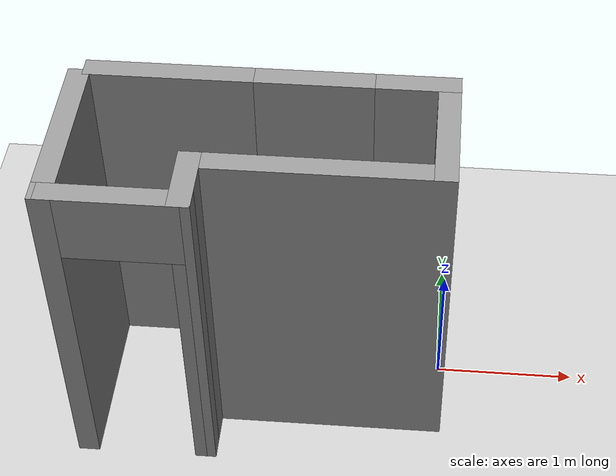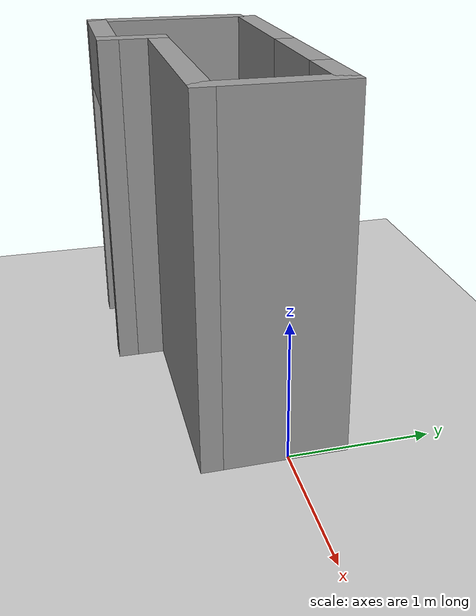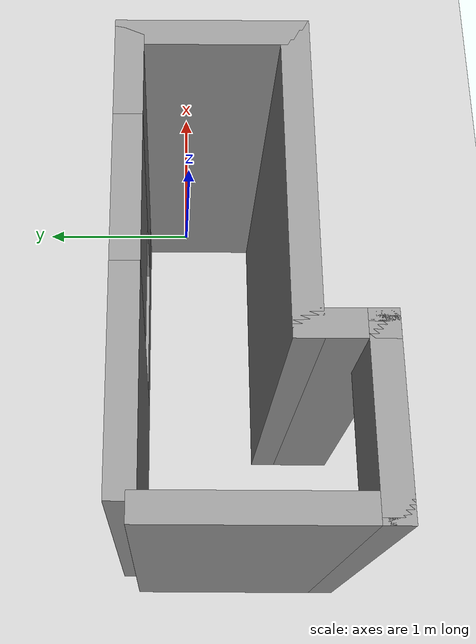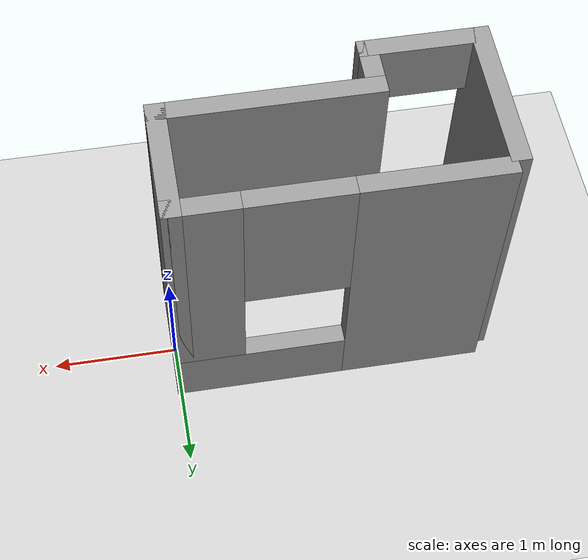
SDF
<sdf version="1.7">
 <world name="default">
  <light name="sun" type="directional">
   <pose>0 0 10 0 -0 0</pose>
   <diffuse>0.8 0.8 0.8 1</diffuse>
   <specular>0.2 0.2 0.2 1</specular>
   <attenuation>
    <range>1000</range>
    <constant>0.9</constant>
    <linear>0.01</linear>
    <quadratic>0.001</quadratic>
   </attenuation>
   <direction>-0.5 0.1 -0.9</direction>
   <spot><inner_angle>0</inner_angle><outer_angle>0</outer_angle><falloff>0</falloff></spot>
  </light>
  <model name="ground_plane">
   <static>1</static>
   <link name="link">
    <collision name="collision">
     <geometry><plane><normal>0 0 1</normal><size>100 100</size></plane></geometry>
     <surface>
      <contact><collide_bitmask>65535</collide_bitmask></contact>
      <friction><ode><mu>100</mu><mu2>50</mu2></ode></friction>
     </surface>
    </collision>
    <visual name="visual">
     <cast_shadows>0</cast_shadows>
     <geometry><plane><normal>0 0 1</normal><size>100 100</size></plane></geometry>
     <material>
      <script><uri>file://media/materials/scripts/gazebo.material</uri><name>Gazebo/Grey</name></script>
     </material>
    </visual>
   </link>
  </model>
  <gravity>0 0 -9.8</gravity>
  <magnetic_field>6e-06 2.3e-05 -4.2e-05</magnetic_field>
  <atmosphere type="adiabatic"/>
  <physics type="ode">
   <max_step_size>0.001</max_step_size>
   <real_time_factor>1</real_time_factor>
   <real_time_update_rate>1000</real_time_update_rate>
  </physics>
  <scene><ambient>0.4 0.4 0.4 1</ambient><background>0.7 0.7 0.7 1</background><shadows>1</shadows></scene>
  <audio><device>default</device></audio>
  <spherical_coordinates>
   <surface_model>EARTH_WGS84</surface_model>
   <latitude_deg>0</latitude_deg>
   <longitude_deg>0</longitude_deg>
   <elevation>0</elevation>
   <heading_deg>0</heading_deg>
  </spherical_coordinates>
  <model name="test__house">
   <pose>-1.27169 0.131848 0 0 -0 0</pose>
   <link name="Wall_0">
    <pose>0.05 0.2025 0 0 -0 0</pose>
    <visual name="Wall_0_Visual_0">
     <pose>-0.6825 0 1.25 0 -0 0</pose>
     <geometry><box><size>1.135 0.15 2.5</size></box></geometry>
     <material>
      <script><uri>file://media/materials/scripts/gazebo.material</uri><name>Gazebo/Grey</name></script>
      <ambient>1 1 1 1</ambient>
     </material>
     <meta><layer>0</layer></meta>
    </visual>
    <collision name="Wall_0_Collision_0">
     <geometry><box><size>1.135 0.15 2.5</size></box></geometry>
     <pose>-0.6825 0 1.25 0 -0 0</pose>
    </collision>
    <visual name="Wall_0_Visual_1">
     <pose>0.5675 0 0.25 0 -0 0</pose>
     <geometry><box><size>1.365 0.15 0.5</size></box></geometry>
     <material>
      <script><uri>file://media/materials/scripts/gazebo.material</uri><name>Gazebo/Grey</name></script>
      <ambient>1 1 1 1</ambient>
     </material>
     <meta><layer>0</layer></meta>
    </visual>
    <collision name="Wall_0_Collision_1">
     <geometry><box><size>1.365 0.15 0.5</size></box></geometry>
     <pose>0.5675 0 0.25 0 -0 0</pose>
    </collision>
    <visual name="Wall_0_Visual_2">
     <pose>0.9675 0 1.5 0 -0 0</pose>
     <geometry><box><size>0.565 0.15 2</size></box></geometry>
     <material>
      <script><uri>file://media/materials/scripts/gazebo.material</uri><name>Gazebo/Grey</name></script>
      <ambient>1 1 1 1</ambient>
     </material>
     <meta><layer>0</layer></meta>
    </visual>
    <collision name="Wall_0_Collision_2">
     <geometry><box><size>0.565 0.15 2</size></box></geometry>
     <pose>0.9675 0 1.5 0 -0 0</pose>
    </collision>
    <visual name="Wall_0_Visual_3">
     <pose>0.285 0 1.9 0 -0 0</pose>
     <geometry><box><size>0.8 0.15 1.2</size></box></geometry>
     <material>
      <script><uri>file://media/materials/scripts/gazebo.material</uri><name>Gazebo/Grey</name></script>
      <ambient>1 1 1 1</ambient>
     </material>
     <meta><layer>0</layer></meta>
    </visual>
    <collision name="Wall_0_Collision_3">
     <geometry><box><size>0.8 0.15 1.2</size></box></geometry>
     <pose>0.285 0 1.9 0 -0 0</pose>
    </collision>
   </link>
   <link name="Wall_1">
    <collision name="Wall_1_Collision">
     <geometry><box><size>1 0.15 2.5</size></box></geometry>
     <pose>0 0 1.25 0 -0 0</pose>
    </collision>
    <visual name="Wall_1_Visual">
     <pose>0 0 1.25 0 -0 0</pose>
     <geometry><box><size>1 0.15 2.5</size></box></geometry>
     <material>
      <script><uri>file://media/materials/scripts/gazebo.material</uri><name>Gazebo/Grey</name></script>
      <ambient>1 1 1 1</ambient>
     </material>
     <meta><layer>0</layer></meta>
    </visual>
    <pose>1.225 -0.2225 0 0 -0 -1.5708</pose>
   </link>
   <link name="Wall_2">
    <collision name="Wall_2_Collision">
     <geometry><box><size>1.75 0.15 2.5</size></box></geometry>
     <pose>0 0 1.25 0 -0 0</pose>
    </collision>
    <visual name="Wall_2_Visual">
     <pose>0 0 1.25 0 -0 0</pose>
     <geometry><box><size>1.75 0.15 2.5</size></box></geometry>
     <material>
      <script><uri>file://media/materials/scripts/gazebo.material</uri><name>Gazebo/Grey</name></script>
      <ambient>1 1 1 1</ambient>
     </material>
     <meta><layer>0</layer></meta>
    </visual>
    <pose>0.425 -0.6475 0 0 -0 3.14159</pose>
   </link>
   <link name="Wall_3">
    <collision name="Wall_3_Collision">
     <geometry><box><size>0.5 0.15 2.5</size></box></geometry>
     <pose>0 0 1.25 0 -0 0</pose>
    </collision>
    <visual name="Wall_3_Visual">
     <pose>0 0 1.25 0 -0 0</pose>
     <geometry><box><size>0.5 0.15 2.5</size></box></geometry>
     <material>
      <script><uri>file://media/materials/scripts/gazebo.material</uri><name>Gazebo/Grey</name></script>
      <ambient>1 1 1 1</ambient>
     </material>
     <meta><layer>0</layer></meta>
    </visual>
    <pose>-0.375 -0.8225 0 0 -0 -1.5708</pose>
   </link>
   <link name="Wall_4">
    <pose>-0.8 -0.9975 0 0 -0 3.14159</pose>
    <visual name="Wall_4_Visual_0">
     <pose>-0.4675 0 1.25 0 -0 0</pose>
     <geometry><box><size>0.065 0.15 2.5</size></box></geometry>
     <material>
      <script><uri>file://media/materials/scripts/gazebo.material</uri><name>Gazebo/Grey</name></script>
      <ambient>1 1 1 1</ambient>
     </material>
     <meta><layer>0</layer></meta>
    </visual>
    <collision name="Wall_4_Collision_0">
     <geometry><box><size>0.065 0.15 2.5</size></box></geometry>
     <pose>-0.4675 0 1.25 0 -0 0</pose>
    </collision>
    <visual name="Wall_4_Visual_1">
     <pose>0.4825 0 1.25 0 -0 0</pose>
     <geometry><box><size>0.035 0.15 2.5</size></box></geometry>
     <material>
      <script><uri>file://media/materials/scripts/gazebo.material</uri><name>Gazebo/Grey</name></script>
      <ambient>1 1 1 1</ambient>
     </material>
     <meta><layer>0</layer></meta>
    </visual>
    <collision name="Wall_4_Collision_1">
     <geometry><box><size>0.035 0.15 2.5</size></box></geometry>
     <pose>0.4825 0 1.25 0 -0 0</pose>
    </collision>
    <visual name="Wall_4_Visual_2">
     <pose>0.015 0 2.25 0 -0 0</pose>
     <geometry><box><size>0.9 0.15 0.5</size></box></geometry>
     <material>
      <script><uri>file://media/materials/scripts/gazebo.material</uri><name>Gazebo/Grey</name></script>
      <ambient>1 1 1 1</ambient>
     </material>
     <meta><layer>0</layer></meta>
    </visual>
    <collision name="Wall_4_Collision_2">
     <geometry><box><size>0.9 0.15 0.5</size></box></geometry>
     <pose>0.015 0 2.25 0 -0 0</pose>
    </collision>
   </link>
   <link name="Wall_5">
    <collision name="Wall_5_Collision">
     <geometry><box><size>1.25 0.15 2.5</size></box></geometry>
     <pose>0 0 1.25 0 -0 0</pose>
    </collision>
    <visual name="Wall_5_Visual">
     <pose>0 0 1.25 0 -0 0</pose>
     <geometry><box><size>1.25 0.15 2.5</size></box></geometry>
     <material>
      <script><uri>file://media/materials/scripts/gazebo.material</uri><name>Gazebo/Grey</name></script>
      <ambient>1 1 1 1</ambient>
     </material>
     <meta><layer>0</layer></meta>
    </visual>
    <pose>-1.225 -0.4475 0 0 -0 1.5708</pose>
   </link>
   <static>1</static>
  </model>
 </world>
</sdf>
